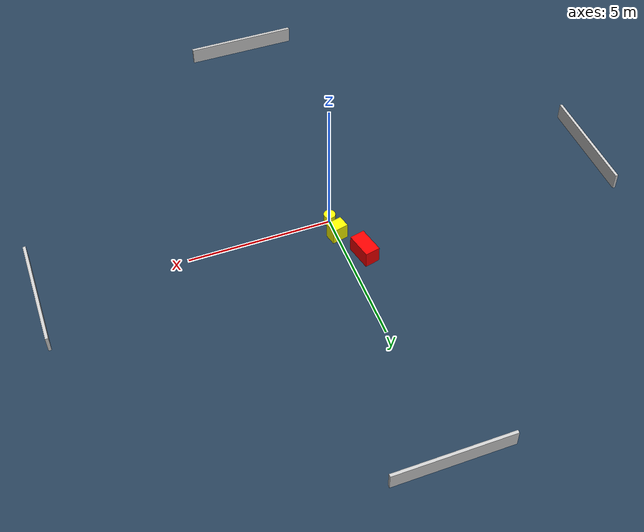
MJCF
<?xml version="1.0" ?>
<mujoco model="generated_environment">
  <option timestep="0.01" integrator="RK4" cone="elliptic"/>
  <default>
    <geom density="1"/>
  </default>
  <asset>
    <texture builtin="gradient" height="3072" name="skybox" rgb1="0.3 0.5 0.7" rgb2="0 0 0" type="skybox" width="512"/>
    <texture builtin="checker" height="300" name="groundplane" rgb1="0.2 0.3 0.4" rgb2="0.1 0.2 0.3" type="2d" width="300"/>
    <material name="groundplane" reflectance="0.2" texrepeat="5 5" texture="groundplane"/>
  </asset>
  <worldbody>
    <light dir="0 0 -1" directional="true" pos="0 0 1.5"/>
    <geom condim="3" friction="0.5 0.005 0.001" material="groundplane" name="floor" pos="0 0 0" size="0 0 0.05" type="plane"/>
    <body name="walls">
      <geom name="wall_1" condim="4" pos="-10.0 0.0 0.3" rgba="0.800000011920929 0.800000011920929 0.800000011920929 1.0" size="0.05 2.0 0.3" type="box"/>
      <geom name="wall_2" condim="4" pos="10.0 0.0 0.3" rgba="0.800000011920929 0.800000011920929 0.800000011920929 1.0" size="0.05 2.0 0.3" type="box"/>
      <geom name="wall_3" condim="4" pos="0.0 -10.0 0.3" rgba="0.800000011920929 0.800000011920929 0.800000011920929 1.0" size="2.0 0.05 0.3" type="box"/>
      <geom name="wall_4" condim="4" pos="0.0 10.0 0.3" rgba="0.800000011920929 0.800000011920929 0.800000011920929 1.0" size="2.0 0.05 0.3" type="box"/>
    </body>
    <body name="robot">
      <joint name="joint_x" type="slide" pos="0 0 0" axis="1 0 0"/>
      <joint name="joint_y" type="slide" pos="0 0 0" axis="0 1 0"/>
      <geom name="robot" type="cylinder" pos="0.0 0.0 0.2" size="0.2 0.2 0.0" mass="5.0" friction="1.0 0.005 0.0001" condim="4" rgba="1.0 1.0 0.0 1.0"/>
    </body>
    <body name="obstacle_1_movable">
      <geom name="obstacle_1_movable" condim="4" pos="-0.0009617554182624751 0.7030780103915375 0.3" euler="0 0 193.12878876471382" friction="0.0 0.005 0.001" rgba="1.0 1.0 0.0 1.0" size="0.28304792336392814 0.2168524016848668 0.3" type="box" mass="0.1"/>
      <joint type="free"/>
    </body>
    <body name="obstacle_2_static">
      <geom name="obstacle_2_static" condim="4" pos="-0.5693724659982548 1.7940763989869837 0.3" euler="0 0 12.781818136387436" friction="0.0 0.005 0.001" rgba="1.0 0.0 0.0 1.0" size="0.261741159508857 0.46369537031277386 0.3" type="box"/>
    </body>
  </worldbody>
  <actuator>
    <motor name="actuator_x" joint="joint_x" gear="1" ctrlrange="-1 1"/>
    <motor name="actuator_y" joint="joint_y" gear="1" ctrlrange="-1 1"/>
  </actuator>
</mujoco>
